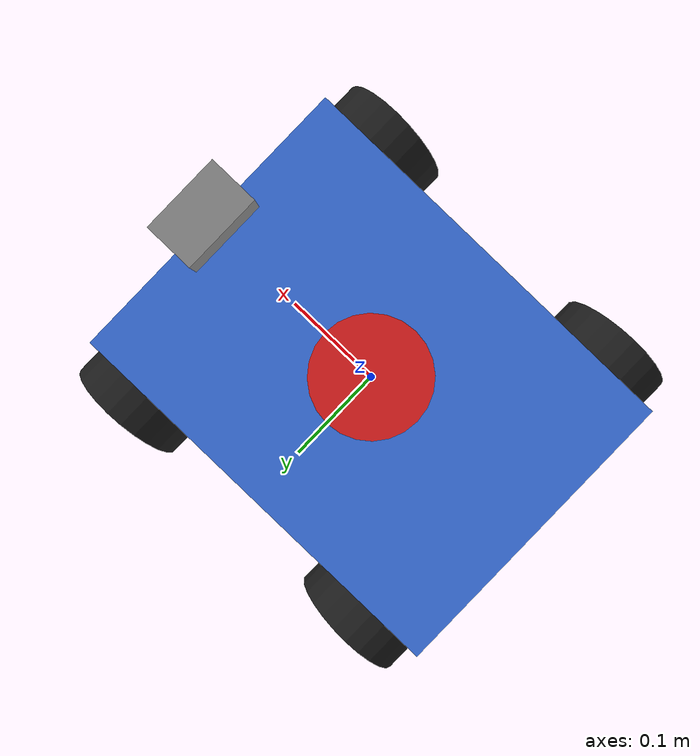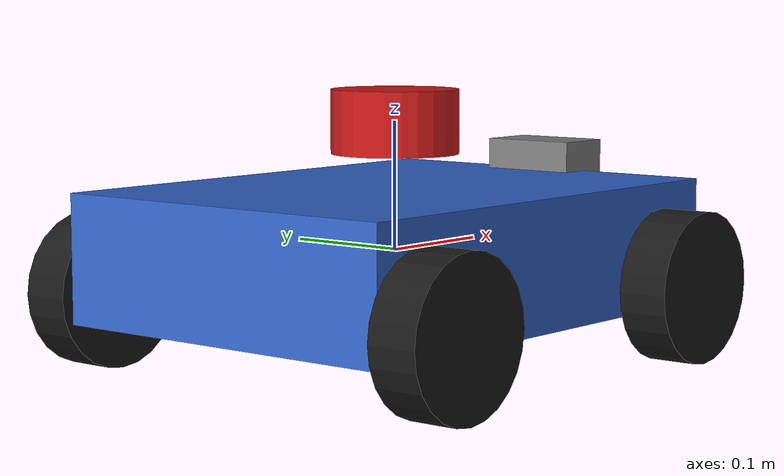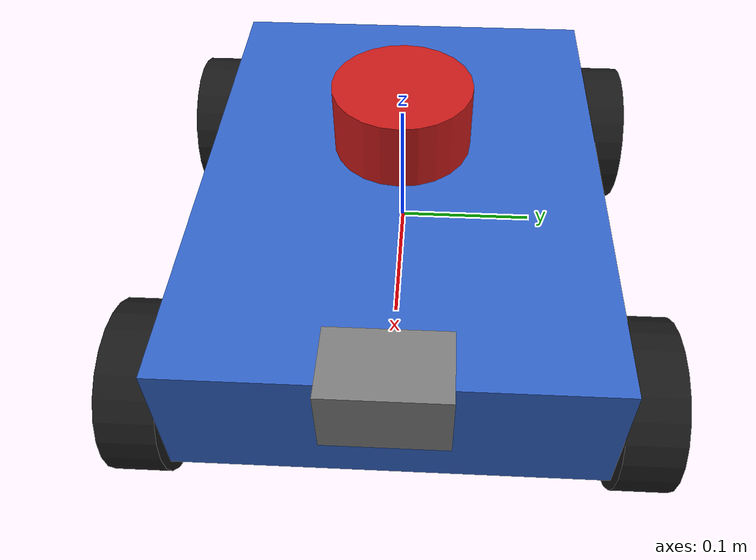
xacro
<?xml version="1.0"?>
<robot name="surveillance_robot" xmlns:xacro="http://www.ros.org/wiki/xacro">

  <!-- Châssis principal -->
  <link name="base_link">
    <visual>
      <geometry><box size="0.4 0.3 0.1"/></geometry>
      <material name="blue"><color rgba="0.2 0.4 0.8 1.0"/></material>
    </visual>
    <collision>
      <geometry><box size="0.4 0.3 0.1"/></geometry>
    </collision>
    <inertial>
      <mass value="5.0"/>
      <inertia ixx="0.1" ixy="0" ixz="0" iyy="0.1" iyz="0" izz="0.1"/>
    </inertial>
  </link>

  <!-- Roue avant gauche -->
  <link name="wheel_fl">
    <visual>
      <geometry><cylinder radius="0.06" length="0.04"/></geometry>
      <material name="black"><color rgba="0.1 0.1 0.1 1.0"/></material>
    </visual>
    <collision>
      <geometry><cylinder radius="0.06" length="0.04"/></geometry>
    </collision>
    <inertial>
      <mass value="0.5"/>
      <inertia ixx="0.01" ixy="0" ixz="0" iyy="0.01" iyz="0" izz="0.01"/>
    </inertial>
  </link>
  <joint name="joint_wheel_fl" type="continuous">
    <parent link="base_link"/>
    <child link="wheel_fl"/>
    <origin xyz="0.15 0.17 -0.03" rpy="1.5707 0 0"/>
    <axis xyz="0 0 1"/>
  </joint>

  <!-- Roue avant droite -->
  <link name="wheel_fr">
    <visual>
      <geometry><cylinder radius="0.06" length="0.04"/></geometry>
      <material name="black"><color rgba="0.1 0.1 0.1 1.0"/></material>
    </visual>
    <collision>
      <geometry><cylinder radius="0.06" length="0.04"/></geometry>
    </collision>
    <inertial>
      <mass value="0.5"/>
      <inertia ixx="0.01" ixy="0" ixz="0" iyy="0.01" iyz="0" izz="0.01"/>
    </inertial>
  </link>
  <joint name="joint_wheel_fr" type="continuous">
    <parent link="base_link"/>
    <child link="wheel_fr"/>
    <origin xyz="0.15 -0.17 -0.03" rpy="1.5707 0 0"/>
    <axis xyz="0 0 1"/>
  </joint>

  <!-- Roue arrière gauche -->
  <link name="wheel_rl">
    <visual>
      <geometry><cylinder radius="0.06" length="0.04"/></geometry>
      <material name="black"><color rgba="0.1 0.1 0.1 1.0"/></material>
    </visual>
    <collision>
      <geometry><cylinder radius="0.06" length="0.04"/></geometry>
    </collision>
    <inertial>
      <mass value="0.5"/>
      <inertia ixx="0.01" ixy="0" ixz="0" iyy="0.01" iyz="0" izz="0.01"/>
    </inertial>
  </link>
  <joint name="joint_wheel_rl" type="continuous">
    <parent link="base_link"/>
    <child link="wheel_rl"/>
    <origin xyz="-0.15 0.17 -0.03" rpy="1.5707 0 0"/>
    <axis xyz="0 0 1"/>
  </joint>

  <!-- Roue arrière droite -->
  <link name="wheel_rr">
    <visual>
      <geometry><cylinder radius="0.06" length="0.04"/></geometry>
      <material name="black"><color rgba="0.1 0.1 0.1 1.0"/></material>
    </visual>
    <collision>
      <geometry><cylinder radius="0.06" length="0.04"/></geometry>
    </collision>
    <inertial>
      <mass value="0.5"/>
      <inertia ixx="0.01" ixy="0" ixz="0" iyy="0.01" iyz="0" izz="0.01"/>
    </inertial>
  </link>
  <joint name="joint_wheel_rr" type="continuous">
    <parent link="base_link"/>
    <child link="wheel_rr"/>
    <origin xyz="-0.15 -0.17 -0.03" rpy="1.5707 0 0"/>
    <axis xyz="0 0 1"/>
  </joint>

  <!-- Lidar -->
  <link name="lidar_link">
    <visual>
      <geometry><cylinder radius="0.05" length="0.05"/></geometry>
      <material name="red"><color rgba="0.8 0.1 0.1 1.0"/></material>
    </visual>
    <inertial>
      <mass value="0.1"/>
      <inertia ixx="0.001" ixy="0" ixz="0" iyy="0.001" iyz="0" izz="0.001"/>
    </inertial>
  </link>
  <joint name="lidar_joint" type="fixed">
    <parent link="base_link"/>
    <child link="lidar_link"/>
    <origin xyz="0.0 0.0 0.1" rpy="0 0 0"/>
  </joint>

  <!-- Caméra -->
  <link name="camera_link">
    <visual>
      <geometry><box size="0.05 0.08 0.05"/></geometry>
      <material name="grey"><color rgba="0.5 0.5 0.5 1.0"/></material>
    </visual>
    <inertial>
      <mass value="0.1"/>
      <inertia ixx="0.001" ixy="0" ixz="0" iyy="0.001" iyz="0" izz="0.001"/>
    </inertial>
  </link>
  <joint name="camera_joint" type="fixed">
    <parent link="base_link"/>
    <child link="camera_link"/>
    <origin xyz="0.2 0.0 0.05" rpy="0 0 0"/>
  </joint>

  <!-- Frame optique caméra -->
  <link name="camera_optical_frame"/>
  <joint name="camera_optical_joint" type="fixed">
    <parent link="camera_link"/>
    <child link="camera_optical_frame"/>
    <origin xyz="0 0 0" rpy="-1.5707 0 -1.5707"/>
  </joint>

  <!-- ═══════════════ PLUGINS GAZEBO ═══════════════ -->

<!-- Mouvement différentiel -->
  <gazebo>
    <plugin filename="gz-sim8-diff-drive-system"
            name="gz::sim::systems::DiffDrive">
      <left_joint>joint_wheel_fl</left_joint>
      <left_joint>joint_wheel_rl</left_joint>
      <right_joint>joint_wheel_fr</right_joint>
      <right_joint>joint_wheel_rr</right_joint>
      <wheel_separation>0.34</wheel_separation>
      <wheel_radius>0.06</wheel_radius>
      <odom_publish_frequency>10</odom_publish_frequency>
      <topic>/cmd_vel</topic>
      <odom_topic>/odom</odom_topic>
      <tf_topic>/tf</tf_topic>
      <frame_id>odom</frame_id>
      <child_frame_id>base_link</child_frame_id>
      <odom_frame>odom</odom_frame>
      <base_frame>base_link</base_frame>
    </plugin>
  </gazebo>

  <!-- Sensors (caméra + lidar) -->
  <gazebo>
    <plugin filename="gz-sim8-sensors-system"
            name="gz::sim::systems::Sensors">
      <render_engine>ogre2</render_engine>
    </plugin>
  </gazebo>

  <!-- Caméra -->
  <gazebo reference="camera_link">
    <sensor name="camera" type="camera">
      <always_on>true</always_on>
      <update_rate>30</update_rate>
      <topic>/camera/image_raw</topic>
      <camera>
        <horizontal_fov>1.047</horizontal_fov>
        <image>
          <width>640</width>
          <height>480</height>
          <format>R8G8B8</format>
        </image>
        <clip>
          <near>0.1</near>
          <far>100</far>
        </clip>
      </camera>
    </sensor>
  </gazebo>

  <!-- Lidar -->
  <gazebo reference="lidar_link">
    <sensor name="lidar" type="gpu_lidar">
      <always_on>true</always_on>
      <update_rate>10</update_rate>
      <topic>/scan</topic>
      <lidar>
        <scan>
          <horizontal>
            <samples>360</samples>
            <resolution>1</resolution>
            <min_angle>-3.14159</min_angle>
            <max_angle>3.14159</max_angle>
          </horizontal>
        </scan>
        <range>
          <min>0.12</min>
          <max>10.0</max>
        </range>
      </lidar>
    </sensor>
  </gazebo>

</robot>
